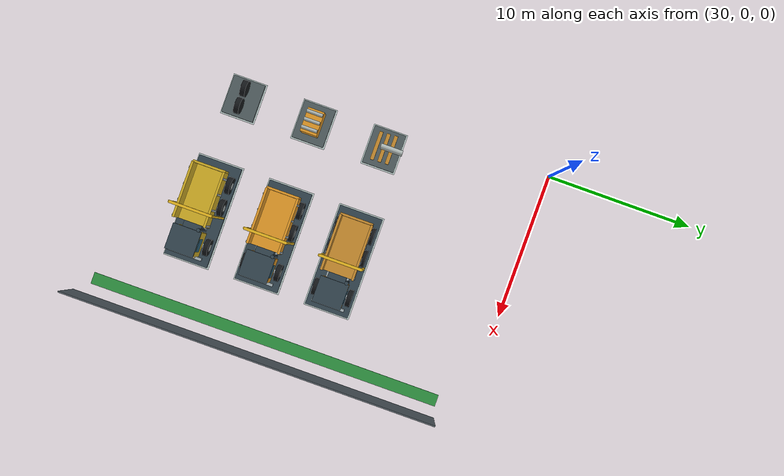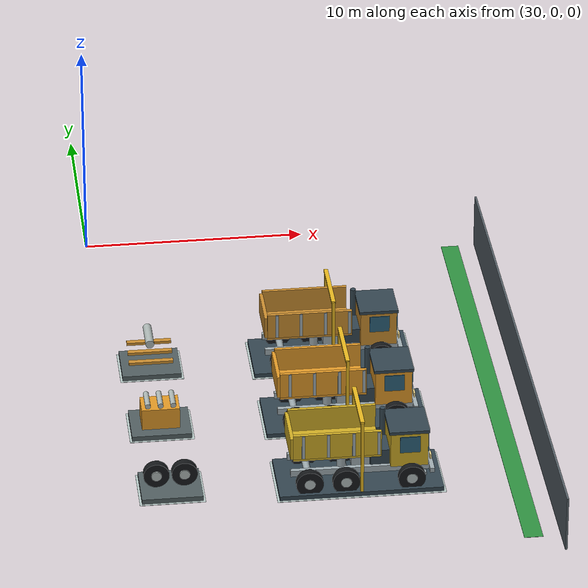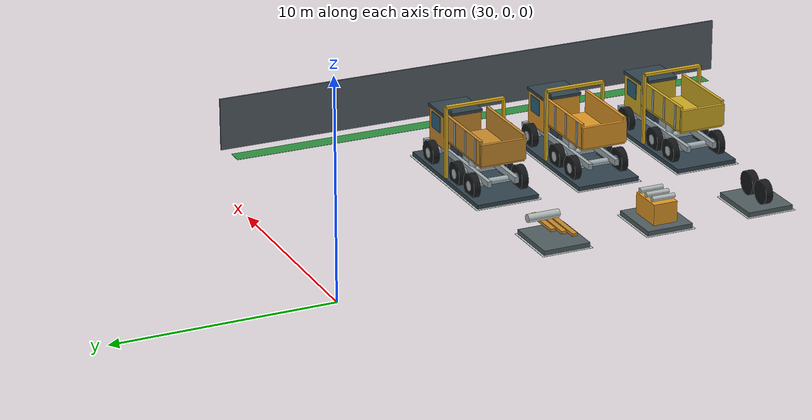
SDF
<sdf version="1.7">
 <world name="warehouse_layout_demo">
  <include><uri>model://sun</uri></include>
  <model name="pedestrian_east_south">
   <static>true</static>
   <pose>46.7 -14.25 0.055 0 0 0</pose>
   <link name="marking">
    <visual name="visual">
     <geometry><box><size>0.8 24.5 0.012</size></box></geometry>
     <material><ambient>0.18 0.57 0.25 1</ambient><diffuse>0.18 0.57 0.25 1</diffuse></material>
    </visual>
   </link>
  </model>
  <model name="east_fence_south">
   <static>true</static>
   <pose>47.9 -14.65 1.25 0 0 0</pose>
   <link name="link">
    <collision name="collision">
     <geometry><box><size>0.09 25.7 2.5</size></box></geometry>
     <surface><friction><ode><mu>0.9</mu><mu2>0.9</mu2></ode></friction></surface>
    </collision>
    <visual name="visual">
     <geometry><box><size>0.09 25.7 2.5</size></box></geometry>
     <material><ambient>0.33 0.37 0.40 1</ambient><diffuse>0.33 0.37 0.40 1</diffuse></material>
    </visual>
   </link>
  </model>
  <model name="vehicle_stage_6_line_1_se_pad">
   <static>true</static>
   <pose>40.0 -21.0 0.012 0 0 0</pose>
   <link name="marking">
    <visual name="visual">
     <geometry><box><size>7.2 3.2 0.012</size></box></geometry>
     <material><ambient>0.72 0.79 0.78 1</ambient><diffuse>0.72 0.79 0.78 1</diffuse></material>
    </visual>
   </link>
  </model>
  <model name="vehicle_stage_6_line_1_se">
   <static>true</static>
   <pose>40.0 -21.0 0 0 0 0</pose>
   <link name="fixture">
    <collision name="collision">
     <pose>0 0 1.9 0 0 0</pose>
     <geometry><box><size>7.0 3.0 3.8</size></box></geometry>
    </collision>
    <visual name="service_platform">
     <pose>0 0 0.11 0 0 0</pose>
     <geometry><box><size>7.0 3.0 0.22</size></box></geometry>
     <material><ambient>0.20 0.27 0.31 1</ambient><diffuse>0.20 0.27 0.31 1</diffuse></material>
    </visual>
    <visual name="chassis_rail_0">
     <pose>0 -0.66 0.85 0 0 0</pose>
     <geometry><box><size>5.9 0.19 0.28</size></box></geometry>
     <material><ambient>0.63 0.68 0.70 1</ambient><diffuse>0.63 0.68 0.70 1</diffuse></material>
    </visual>
    <visual name="haul_tire_0_0">
     <pose>-2.2 -1.18 0.63 1.57079632679 0 0</pose>
     <geometry><cylinder><radius>0.58</radius><length>0.32</length></cylinder></geometry>
     <material><ambient>0.08 0.09 0.10 1</ambient><diffuse>0.08 0.09 0.10 1</diffuse></material>
    </visual>
    <visual name="tire_hub_0_0">
     <pose>-2.2 -1.18 0.63 1.57079632679 0 0</pose>
     <geometry><cylinder><radius>0.23</radius><length>0.34</length></cylinder></geometry>
     <material><ambient>0.70 0.74 0.74 1</ambient><diffuse>0.70 0.74 0.74 1</diffuse></material>
    </visual>
    <visual name="haul_tire_0_1">
     <pose>-0.65 -1.18 0.63 1.57079632679 0 0</pose>
     <geometry><cylinder><radius>0.58</radius><length>0.32</length></cylinder></geometry>
     <material><ambient>0.08 0.09 0.10 1</ambient><diffuse>0.08 0.09 0.10 1</diffuse></material>
    </visual>
    <visual name="tire_hub_0_1">
     <pose>-0.65 -1.18 0.63 1.57079632679 0 0</pose>
     <geometry><cylinder><radius>0.23</radius><length>0.34</length></cylinder></geometry>
     <material><ambient>0.70 0.74 0.74 1</ambient><diffuse>0.70 0.74 0.74 1</diffuse></material>
    </visual>
    <visual name="haul_tire_0_2">
     <pose>2.15 -1.18 0.63 1.57079632679 0 0</pose>
     <geometry><cylinder><radius>0.58</radius><length>0.32</length></cylinder></geometry>
     <material><ambient>0.08 0.09 0.10 1</ambient><diffuse>0.08 0.09 0.10 1</diffuse></material>
    </visual>
    <visual name="tire_hub_0_2">
     <pose>2.15 -1.18 0.63 1.57079632679 0 0</pose>
     <geometry><cylinder><radius>0.23</radius><length>0.34</length></cylinder></geometry>
     <material><ambient>0.70 0.74 0.74 1</ambient><diffuse>0.70 0.74 0.74 1</diffuse></material>
    </visual>
    <visual name="chassis_rail_1">
     <pose>0 0.66 0.85 0 0 0</pose>
     <geometry><box><size>5.9 0.19 0.28</size></box></geometry>
     <material><ambient>0.63 0.68 0.70 1</ambient><diffuse>0.63 0.68 0.70 1</diffuse></material>
    </visual>
    <visual name="haul_tire_1_0">
     <pose>-2.2 1.18 0.63 1.57079632679 0 0</pose>
     <geometry><cylinder><radius>0.58</radius><length>0.32</length></cylinder></geometry>
     <material><ambient>0.08 0.09 0.10 1</ambient><diffuse>0.08 0.09 0.10 1</diffuse></material>
    </visual>
    <visual name="tire_hub_1_0">
     <pose>-2.2 1.18 0.63 1.57079632679 0 0</pose>
     <geometry><cylinder><radius>0.23</radius><length>0.34</length></cylinder></geometry>
     <material><ambient>0.70 0.74 0.74 1</ambient><diffuse>0.70 0.74 0.74 1</diffuse></material>
    </visual>
    <visual name="haul_tire_1_1">
     <pose>-0.65 1.18 0.63 1.57079632679 0 0</pose>
     <geometry><cylinder><radius>0.58</radius><length>0.32</length></cylinder></geometry>
     <material><ambient>0.08 0.09 0.10 1</ambient><diffuse>0.08 0.09 0.10 1</diffuse></material>
    </visual>
    <visual name="tire_hub_1_1">
     <pose>-0.65 1.18 0.63 1.57079632679 0 0</pose>
     <geometry><cylinder><radius>0.23</radius><length>0.34</length></cylinder></geometry>
     <material><ambient>0.70 0.74 0.74 1</ambient><diffuse>0.70 0.74 0.74 1</diffuse></material>
    </visual>
    <visual name="haul_tire_1_2">
     <pose>2.15 1.18 0.63 1.57079632679 0 0</pose>
     <geometry><cylinder><radius>0.58</radius><length>0.32</length></cylinder></geometry>
     <material><ambient>0.08 0.09 0.10 1</ambient><diffuse>0.08 0.09 0.10 1</diffuse></material>
    </visual>
    <visual name="tire_hub_1_2">
     <pose>2.15 1.18 0.63 1.57079632679 0 0</pose>
     <geometry><cylinder><radius>0.23</radius><length>0.34</length></cylinder></geometry>
     <material><ambient>0.70 0.74 0.74 1</ambient><diffuse>0.70 0.74 0.74 1</diffuse></material>
    </visual>
    <visual name="drive_axle_0">
     <pose>-2.2 0 0.68 1.57079632679 0 0</pose>
     <geometry><cylinder><radius>0.15</radius><length>2.38</length></cylinder></geometry>
     <material><ambient>0.63 0.68 0.70 1</ambient><diffuse>0.63 0.68 0.70 1</diffuse></material>
    </visual>
    <visual name="drive_axle_1">
     <pose>-0.65 0 0.68 1.57079632679 0 0</pose>
     <geometry><cylinder><radius>0.15</radius><length>2.38</length></cylinder></geometry>
     <material><ambient>0.63 0.68 0.70 1</ambient><diffuse>0.63 0.68 0.70 1</diffuse></material>
    </visual>
    <visual name="drive_axle_2">
     <pose>2.15 0 0.68 1.57079632679 0 0</pose>
     <geometry><cylinder><radius>0.15</radius><length>2.38</length></cylinder></geometry>
     <material><ambient>0.63 0.68 0.70 1</ambient><diffuse>0.63 0.68 0.70 1</diffuse></material>
    </visual>
    <visual name="diesel_engine">
     <pose>1.15 0 1.26 0 0 0</pose>
     <geometry><box><size>1.38 1.22 0.83</size></box></geometry>
     <material><ambient>0.20 0.27 0.31 1</ambient><diffuse>0.20 0.27 0.31 1</diffuse></material>
    </visual>
    <visual name="gearbox">
     <pose>0.08 0 1.12 0 0 0</pose>
     <geometry><box><size>0.82 0.76 0.6</size></box></geometry>
     <material><ambient>0.63 0.68 0.70 1</ambient><diffuse>0.63 0.68 0.70 1</diffuse></material>
    </visual>
    <visual name="radiator_fan">
     <pose>1.98 0 1.29 1.57079632679 0 0</pose>
     <geometry><cylinder><radius>0.41</radius><length>0.15</length></cylinder></geometry>
     <material><ambient>0.76 0.80 0.79 1</ambient><diffuse>0.76 0.80 0.79 1</diffuse></material>
    </visual>
    <visual name="operator_cab">
     <pose>2.08 0 1.82 0 0 0</pose>
     <geometry><box><size>1.6 1.83 1.62</size></box></geometry>
     <material><ambient>0.82 0.68 0.14 1</ambient><diffuse>0.82 0.68 0.14 1</diffuse></material>
    </visual>
    <visual name="cab_roof">
     <pose>2.08 0 2.66 0 0 0</pose>
     <geometry><box><size>1.72 1.91 0.14</size></box></geometry>
     <material><ambient>0.20 0.27 0.31 1</ambient><diffuse>0.20 0.27 0.31 1</diffuse></material>
    </visual>
    <visual name="windshield">
     <pose>2.91 0 2.03 0 0 0</pose>
     <geometry><box><size>0.045 1.48 0.91</size></box></geometry>
     <material><ambient>0.17 0.38 0.48 1</ambient><diffuse>0.17 0.38 0.48 1</diffuse></material>
    </visual>
    <visual name="exhaust_stack">
     <pose>1.14 0.76 2.15 0.0 0 0</pose>
     <geometry><cylinder><radius>0.12</radius><length>1.57</length></cylinder></geometry>
     <material><ambient>0.20 0.27 0.31 1</ambient><diffuse>0.20 0.27 0.31 1</diffuse></material>
    </visual>
    <visual name="cab_side_glass_0">
     <pose>2.11 -0.95 2.08 0 0 0</pose>
     <geometry><box><size>0.87 0.035 0.76</size></box></geometry>
     <material><ambient>0.17 0.38 0.48 1</ambient><diffuse>0.17 0.38 0.48 1</diffuse></material>
    </visual>
    <visual name="cab_side_glass_1">
     <pose>2.11 0.95 2.08 0 0 0</pose>
     <geometry><box><size>0.87 0.035 0.76</size></box></geometry>
     <material><ambient>0.17 0.38 0.48 1</ambient><diffuse>0.17 0.38 0.48 1</diffuse></material>
    </visual>
    <visual name="dump_bed_floor">
     <pose>-1.01 0 1.78 0 0 0</pose>
     <geometry><box><size>3.75 2.15 0.22</size></box></geometry>
     <material><ambient>0.82 0.68 0.14 1</ambient><diffuse>0.82 0.68 0.14 1</diffuse></material>
    </visual>
    <visual name="dump_bed_side_0">
     <pose>-1.01 -1.05 2.37 0 0 0</pose>
     <geometry><box><size>3.75 0.15 1.15</size></box></geometry>
     <material><ambient>0.82 0.68 0.14 1</ambient><diffuse>0.82 0.68 0.14 1</diffuse></material>
    </visual>
    <visual name="bed_rib_0_0">
     <pose>-2.46 -1.1235000000000002 2.37 0 0 0</pose>
     <geometry><box><size>0.13 0.08 1.1</size></box></geometry>
     <material><ambient>0.63 0.68 0.70 1</ambient><diffuse>0.63 0.68 0.70 1</diffuse></material>
    </visual>
    <visual name="bed_rib_0_1">
     <pose>-1.39 -1.1235000000000002 2.37 0 0 0</pose>
     <geometry><box><size>0.13 0.08 1.1</size></box></geometry>
     <material><ambient>0.63 0.68 0.70 1</ambient><diffuse>0.63 0.68 0.70 1</diffuse></material>
    </visual>
    <visual name="bed_rib_0_2">
     <pose>-0.32 -1.1235000000000002 2.37 0 0 0</pose>
     <geometry><box><size>0.13 0.08 1.1</size></box></geometry>
     <material><ambient>0.63 0.68 0.70 1</ambient><diffuse>0.63 0.68 0.70 1</diffuse></material>
    </visual>
    <visual name="bed_rib_0_3">
     <pose>0.75 -1.1235000000000002 2.37 0 0 0</pose>
     <geometry><box><size>0.13 0.08 1.1</size></box></geometry>
     <material><ambient>0.63 0.68 0.70 1</ambient><diffuse>0.63 0.68 0.70 1</diffuse></material>
    </visual>
    <visual name="dump_bed_side_1">
     <pose>-1.01 1.05 2.37 0 0 0</pose>
     <geometry><box><size>3.75 0.15 1.15</size></box></geometry>
     <material><ambient>0.82 0.68 0.14 1</ambient><diffuse>0.82 0.68 0.14 1</diffuse></material>
    </visual>
    <visual name="bed_rib_1_0">
     <pose>-2.46 1.1235000000000002 2.37 0 0 0</pose>
     <geometry><box><size>0.13 0.08 1.1</size></box></geometry>
     <material><ambient>0.63 0.68 0.70 1</ambient><diffuse>0.63 0.68 0.70 1</diffuse></material>
    </visual>
    <visual name="bed_rib_1_1">
     <pose>-1.39 1.1235000000000002 2.37 0 0 0</pose>
     <geometry><box><size>0.13 0.08 1.1</size></box></geometry>
     <material><ambient>0.63 0.68 0.70 1</ambient><diffuse>0.63 0.68 0.70 1</diffuse></material>
    </visual>
    <visual name="bed_rib_1_2">
     <pose>-0.32 1.1235000000000002 2.37 0 0 0</pose>
     <geometry><box><size>0.13 0.08 1.1</size></box></geometry>
     <material><ambient>0.63 0.68 0.70 1</ambient><diffuse>0.63 0.68 0.70 1</diffuse></material>
    </visual>
    <visual name="bed_rib_1_3">
     <pose>0.75 1.1235000000000002 2.37 0 0 0</pose>
     <geometry><box><size>0.13 0.08 1.1</size></box></geometry>
     <material><ambient>0.63 0.68 0.70 1</ambient><diffuse>0.63 0.68 0.70 1</diffuse></material>
    </visual>
    <visual name="rear_gate">
     <pose>-2.93 0 2.29 0 0 0</pose>
     <geometry><box><size>0.15 2.2 1.0</size></box></geometry>
     <material><ambient>0.82 0.68 0.14 1</ambient><diffuse>0.82 0.68 0.14 1</diffuse></material>
    </visual>
    <visual name="hydraulic_lift_left">
     <pose>-0.78 -0.48 1.37 0.0 0 0</pose>
     <geometry><cylinder><radius>0.18</radius><length>1.0</length></cylinder></geometry>
     <material><ambient>0.63 0.68 0.70 1</ambient><diffuse>0.63 0.68 0.70 1</diffuse></material>
    </visual>
    <visual name="hydraulic_lift_right">
     <pose>-0.78 0.48 1.37 0.0 0 0</pose>
     <geometry><cylinder><radius>0.18</radius><length>1.0</length></cylinder></geometry>
     <material><ambient>0.63 0.68 0.70 1</ambient><diffuse>0.63 0.68 0.70 1</diffuse></material>
    </visual>
    <visual name="test_gantry_post_0">
     <pose>0 -1.42 1.86 0 0 0</pose>
     <geometry><box><size>0.13 0.13 3.52</size></box></geometry>
     <material><ambient>0.91 0.72 0.12 1</ambient><diffuse>0.91 0.72 0.12 1</diffuse></material>
    </visual>
    <visual name="test_gantry_post_1">
     <pose>0 1.42 1.86 0 0 0</pose>
     <geometry><box><size>0.13 0.13 3.52</size></box></geometry>
     <material><ambient>0.91 0.72 0.12 1</ambient><diffuse>0.91 0.72 0.12 1</diffuse></material>
    </visual>
    <visual name="test_gantry_beam">
     <pose>0 0 3.59 0 0 0</pose>
     <geometry><box><size>0.18 2.86 0.13</size></box></geometry>
     <material><ambient>0.91 0.72 0.12 1</ambient><diffuse>0.91 0.72 0.12 1</diffuse></material>
    </visual>
    <visual name="headlamp_0">
     <pose>3.01 -0.62 1.3 0 0 0</pose>
     <geometry><box><size>0.07 0.3 0.21</size></box></geometry>
     <material><ambient>0.98 0.89 0.59 1</ambient><diffuse>0.98 0.89 0.59 1</diffuse></material>
    </visual>
    <visual name="headlamp_1">
     <pose>3.01 0.62 1.3 0 0 0</pose>
     <geometry><box><size>0.07 0.3 0.21</size></box></geometry>
     <material><ambient>0.98 0.89 0.59 1</ambient><diffuse>0.98 0.89 0.59 1</diffuse></material>
    </visual>
    <visual name="front_bumper">
     <pose>3.04 0 0.85 0 0 0</pose>
     <geometry><box><size>0.19 2.27 0.21</size></box></geometry>
     <material><ambient>0.63 0.68 0.70 1</ambient><diffuse>0.63 0.68 0.70 1</diffuse></material>
    </visual>
    <visual name="safety_step">
     <pose>2.45 -1.02 0.72 0 0 0</pose>
     <geometry><box><size>0.67 0.23 0.13</size></box></geometry>
     <material><ambient>0.63 0.68 0.70 1</ambient><diffuse>0.63 0.68 0.70 1</diffuse></material>
    </visual>
   </link>
  </model>
  <model name="assembly_kit_2_line_1_se_pad">
   <static>true</static>
   <pose>32.0 -21.0 0.012 0 0 0</pose>
   <link name="marking">
    <visual name="visual">
     <geometry><box><size>2.8000000000000003 2.4000000000000004 0.012</size></box></geometry>
     <material><ambient>0.72 0.79 0.78 1</ambient><diffuse>0.72 0.79 0.78 1</diffuse></material>
    </visual>
   </link>
  </model>
  <model name="assembly_kit_2_line_1_se">
   <static>true</static>
   <pose>32.0 -21.0 0 0 0 0</pose>
   <link name="fixture">
    <collision name="collision">
     <pose>0 0 0.95 0 0 0</pose>
     <geometry><box><size>2.6 2.2 1.9</size></box></geometry>
    </collision>
    <visual name="kit_frame">
     <pose>0 0 0.12 0 0 0</pose>
     <geometry><box><size>2.6 2.2 0.24</size></box></geometry>
     <material><ambient>0.32 0.37 0.38 1</ambient><diffuse>0.32 0.37 0.38 1</diffuse></material>
    </visual>
    <visual name="spare_tire_0">
     <pose>-0.6 0 0.8 1.57079632679 0 0</pose>
     <geometry><cylinder><radius>0.55</radius><length>0.35</length></cylinder></geometry>
     <material><ambient>0.08 0.09 0.10 1</ambient><diffuse>0.08 0.09 0.10 1</diffuse></material>
    </visual>
    <visual name="tire_hub_0">
     <pose>-0.6 -0.2 0.8 1.57079632679 0 0</pose>
     <geometry><cylinder><radius>0.22</radius><length>0.05</length></cylinder></geometry>
     <material><ambient>0.69 0.73 0.72 1</ambient><diffuse>0.69 0.73 0.72 1</diffuse></material>
    </visual>
    <visual name="spare_tire_1">
     <pose>0.6 0 0.8 1.57079632679 0 0</pose>
     <geometry><cylinder><radius>0.55</radius><length>0.35</length></cylinder></geometry>
     <material><ambient>0.08 0.09 0.10 1</ambient><diffuse>0.08 0.09 0.10 1</diffuse></material>
    </visual>
    <visual name="tire_hub_1">
     <pose>0.6 -0.2 0.8 1.57079632679 0 0</pose>
     <geometry><cylinder><radius>0.22</radius><length>0.05</length></cylinder></geometry>
     <material><ambient>0.69 0.73 0.72 1</ambient><diffuse>0.69 0.73 0.72 1</diffuse></material>
    </visual>
   </link>
  </model>
  <model name="vehicle_stage_6_line_2_se_pad">
   <static>true</static>
   <pose>40.0 -16.0 0.012 0 0 0</pose>
   <link name="marking">
    <visual name="visual">
     <geometry><box><size>7.2 3.2 0.012</size></box></geometry>
     <material><ambient>0.72 0.79 0.78 1</ambient><diffuse>0.72 0.79 0.78 1</diffuse></material>
    </visual>
   </link>
  </model>
  <model name="vehicle_stage_6_line_2_se">
   <static>true</static>
   <pose>40.0 -16.0 0 0 0 0</pose>
   <link name="fixture">
    <collision name="collision">
     <pose>0 0 1.9 0 0 0</pose>
     <geometry><box><size>7.0 3.0 3.8</size></box></geometry>
    </collision>
    <visual name="service_platform">
     <pose>0 0 0.11 0 0 0</pose>
     <geometry><box><size>7.0 3.0 0.22</size></box></geometry>
     <material><ambient>0.20 0.27 0.31 1</ambient><diffuse>0.20 0.27 0.31 1</diffuse></material>
    </visual>
    <visual name="chassis_rail_0">
     <pose>0 -0.66 0.85 0 0 0</pose>
     <geometry><box><size>5.9 0.19 0.28</size></box></geometry>
     <material><ambient>0.63 0.68 0.70 1</ambient><diffuse>0.63 0.68 0.70 1</diffuse></material>
    </visual>
    <visual name="haul_tire_0_0">
     <pose>-2.2 -1.18 0.63 1.57079632679 0 0</pose>
     <geometry><cylinder><radius>0.58</radius><length>0.32</length></cylinder></geometry>
     <material><ambient>0.08 0.09 0.10 1</ambient><diffuse>0.08 0.09 0.10 1</diffuse></material>
    </visual>
    <visual name="tire_hub_0_0">
     <pose>-2.2 -1.18 0.63 1.57079632679 0 0</pose>
     <geometry><cylinder><radius>0.23</radius><length>0.34</length></cylinder></geometry>
     <material><ambient>0.70 0.74 0.74 1</ambient><diffuse>0.70 0.74 0.74 1</diffuse></material>
    </visual>
    <visual name="haul_tire_0_1">
     <pose>-0.65 -1.18 0.63 1.57079632679 0 0</pose>
     <geometry><cylinder><radius>0.58</radius><length>0.32</length></cylinder></geometry>
     <material><ambient>0.08 0.09 0.10 1</ambient><diffuse>0.08 0.09 0.10 1</diffuse></material>
    </visual>
    <visual name="tire_hub_0_1">
     <pose>-0.65 -1.18 0.63 1.57079632679 0 0</pose>
     <geometry><cylinder><radius>0.23</radius><length>0.34</length></cylinder></geometry>
     <material><ambient>0.70 0.74 0.74 1</ambient><diffuse>0.70 0.74 0.74 1</diffuse></material>
    </visual>
    <visual name="haul_tire_0_2">
     <pose>2.15 -1.18 0.63 1.57079632679 0 0</pose>
     <geometry><cylinder><radius>0.58</radius><length>0.32</length></cylinder></geometry>
     <material><ambient>0.08 0.09 0.10 1</ambient><diffuse>0.08 0.09 0.10 1</diffuse></material>
    </visual>
    <visual name="tire_hub_0_2">
     <pose>2.15 -1.18 0.63 1.57079632679 0 0</pose>
     <geometry><cylinder><radius>0.23</radius><length>0.34</length></cylinder></geometry>
     <material><ambient>0.70 0.74 0.74 1</ambient><diffuse>0.70 0.74 0.74 1</diffuse></material>
    </visual>
    <visual name="chassis_rail_1">
     <pose>0 0.66 0.85 0 0 0</pose>
     <geometry><box><size>5.9 0.19 0.28</size></box></geometry>
     <material><ambient>0.63 0.68 0.70 1</ambient><diffuse>0.63 0.68 0.70 1</diffuse></material>
    </visual>
    <visual name="haul_tire_1_0">
     <pose>-2.2 1.18 0.63 1.57079632679 0 0</pose>
     <geometry><cylinder><radius>0.58</radius><length>0.32</length></cylinder></geometry>
     <material><ambient>0.08 0.09 0.10 1</ambient><diffuse>0.08 0.09 0.10 1</diffuse></material>
    </visual>
    <visual name="tire_hub_1_0">
     <pose>-2.2 1.18 0.63 1.57079632679 0 0</pose>
     <geometry><cylinder><radius>0.23</radius><length>0.34</length></cylinder></geometry>
     <material><ambient>0.70 0.74 0.74 1</ambient><diffuse>0.70 0.74 0.74 1</diffuse></material>
    </visual>
    <visual name="haul_tire_1_1">
     <pose>-0.65 1.18 0.63 1.57079632679 0 0</pose>
     <geometry><cylinder><radius>0.58</radius><length>0.32</length></cylinder></geometry>
     <material><ambient>0.08 0.09 0.10 1</ambient><diffuse>0.08 0.09 0.10 1</diffuse></material>
    </visual>
    <visual name="tire_hub_1_1">
     <pose>-0.65 1.18 0.63 1.57079632679 0 0</pose>
     <geometry><cylinder><radius>0.23</radius><length>0.34</length></cylinder></geometry>
     <material><ambient>0.70 0.74 0.74 1</ambient><diffuse>0.70 0.74 0.74 1</diffuse></material>
    </visual>
    <visual name="haul_tire_1_2">
     <pose>2.15 1.18 0.63 1.57079632679 0 0</pose>
     <geometry><cylinder><radius>0.58</radius><length>0.32</length></cylinder></geometry>
     <material><ambient>0.08 0.09 0.10 1</ambient><diffuse>0.08 0.09 0.10 1</diffuse></material>
    </visual>
    <visual name="tire_hub_1_2">
     <pose>2.15 1.18 0.63 1.57079632679 0 0</pose>
     <geometry><cylinder><radius>0.23</radius><length>0.34</length></cylinder></geometry>
     <material><ambient>0.70 0.74 0.74 1</ambient><diffuse>0.70 0.74 0.74 1</diffuse></material>
    </visual>
    <visual name="drive_axle_0">
     <pose>-2.2 0 0.68 1.57079632679 0 0</pose>
     <geometry><cylinder><radius>0.15</radius><length>2.38</length></cylinder></geometry>
     <material><ambient>0.63 0.68 0.70 1</ambient><diffuse>0.63 0.68 0.70 1</diffuse></material>
    </visual>
    <visual name="drive_axle_1">
     <pose>-0.65 0 0.68 1.57079632679 0 0</pose>
     <geometry><cylinder><radius>0.15</radius><length>2.38</length></cylinder></geometry>
     <material><ambient>0.63 0.68 0.70 1</ambient><diffuse>0.63 0.68 0.70 1</diffuse></material>
    </visual>
    <visual name="drive_axle_2">
     <pose>2.15 0 0.68 1.57079632679 0 0</pose>
     <geometry><cylinder><radius>0.15</radius><length>2.38</length></cylinder></geometry>
     <material><ambient>0.63 0.68 0.70 1</ambient><diffuse>0.63 0.68 0.70 1</diffuse></material>
    </visual>
    <visual name="diesel_engine">
     <pose>1.15 0 1.26 0 0 0</pose>
     <geometry><box><size>1.38 1.22 0.83</size></box></geometry>
     <material><ambient>0.20 0.27 0.31 1</ambient><diffuse>0.20 0.27 0.31 1</diffuse></material>
    </visual>
    <visual name="gearbox">
     <pose>0.08 0 1.12 0 0 0</pose>
     <geometry><box><size>0.82 0.76 0.6</size></box></geometry>
     <material><ambient>0.63 0.68 0.70 1</ambient><diffuse>0.63 0.68 0.70 1</diffuse></material>
    </visual>
    <visual name="radiator_fan">
     <pose>1.98 0 1.29 1.57079632679 0 0</pose>
     <geometry><cylinder><radius>0.41</radius><length>0.15</length></cylinder></geometry>
     <material><ambient>0.76 0.80 0.79 1</ambient><diffuse>0.76 0.80 0.79 1</diffuse></material>
    </visual>
    <visual name="operator_cab">
     <pose>2.08 0 1.82 0 0 0</pose>
     <geometry><box><size>1.6 1.83 1.62</size></box></geometry>
     <material><ambient>0.89 0.60 0.15 1</ambient><diffuse>0.89 0.60 0.15 1</diffuse></material>
    </visual>
    <visual name="cab_roof">
     <pose>2.08 0 2.66 0 0 0</pose>
     <geometry><box><size>1.72 1.91 0.14</size></box></geometry>
     <material><ambient>0.20 0.27 0.31 1</ambient><diffuse>0.20 0.27 0.31 1</diffuse></material>
    </visual>
    <visual name="windshield">
     <pose>2.91 0 2.03 0 0 0</pose>
     <geometry><box><size>0.045 1.48 0.91</size></box></geometry>
     <material><ambient>0.17 0.38 0.48 1</ambient><diffuse>0.17 0.38 0.48 1</diffuse></material>
    </visual>
    <visual name="exhaust_stack">
     <pose>1.14 0.76 2.15 0.0 0 0</pose>
     <geometry><cylinder><radius>0.12</radius><length>1.57</length></cylinder></geometry>
     <material><ambient>0.20 0.27 0.31 1</ambient><diffuse>0.20 0.27 0.31 1</diffuse></material>
    </visual>
    <visual name="cab_side_glass_0">
     <pose>2.11 -0.95 2.08 0 0 0</pose>
     <geometry><box><size>0.87 0.035 0.76</size></box></geometry>
     <material><ambient>0.17 0.38 0.48 1</ambient><diffuse>0.17 0.38 0.48 1</diffuse></material>
    </visual>
    <visual name="cab_side_glass_1">
     <pose>2.11 0.95 2.08 0 0 0</pose>
     <geometry><box><size>0.87 0.035 0.76</size></box></geometry>
     <material><ambient>0.17 0.38 0.48 1</ambient><diffuse>0.17 0.38 0.48 1</diffuse></material>
    </visual>
    <visual name="dump_bed_floor">
     <pose>-1.01 0 1.78 0 0 0</pose>
     <geometry><box><size>3.75 2.15 0.22</size></box></geometry>
     <material><ambient>0.89 0.60 0.15 1</ambient><diffuse>0.89 0.60 0.15 1</diffuse></material>
    </visual>
    <visual name="dump_bed_side_0">
     <pose>-1.01 -1.05 2.37 0 0 0</pose>
     <geometry><box><size>3.75 0.15 1.15</size></box></geometry>
     <material><ambient>0.89 0.60 0.15 1</ambient><diffuse>0.89 0.60 0.15 1</diffuse></material>
    </visual>
    <visual name="bed_rib_0_0">
     <pose>-2.46 -1.1235000000000002 2.37 0 0 0</pose>
     <geometry><box><size>0.13 0.08 1.1</size></box></geometry>
     <material><ambient>0.63 0.68 0.70 1</ambient><diffuse>0.63 0.68 0.70 1</diffuse></material>
    </visual>
    <visual name="bed_rib_0_1">
     <pose>-1.39 -1.1235000000000002 2.37 0 0 0</pose>
     <geometry><box><size>0.13 0.08 1.1</size></box></geometry>
     <material><ambient>0.63 0.68 0.70 1</ambient><diffuse>0.63 0.68 0.70 1</diffuse></material>
    </visual>
    <visual name="bed_rib_0_2">
     <pose>-0.32 -1.1235000000000002 2.37 0 0 0</pose>
     <geometry><box><size>0.13 0.08 1.1</size></box></geometry>
     <material><ambient>0.63 0.68 0.70 1</ambient><diffuse>0.63 0.68 0.70 1</diffuse></material>
    </visual>
    <visual name="bed_rib_0_3">
     <pose>0.75 -1.1235000000000002 2.37 0 0 0</pose>
     <geometry><box><size>0.13 0.08 1.1</size></box></geometry>
     <material><ambient>0.63 0.68 0.70 1</ambient><diffuse>0.63 0.68 0.70 1</diffuse></material>
    </visual>
    <visual name="dump_bed_side_1">
     <pose>-1.01 1.05 2.37 0 0 0</pose>
     <geometry><box><size>3.75 0.15 1.15</size></box></geometry>
     <material><ambient>0.89 0.60 0.15 1</ambient><diffuse>0.89 0.60 0.15 1</diffuse></material>
    </visual>
    <visual name="bed_rib_1_0">
     <pose>-2.46 1.1235000000000002 2.37 0 0 0</pose>
     <geometry><box><size>0.13 0.08 1.1</size></box></geometry>
     <material><ambient>0.63 0.68 0.70 1</ambient><diffuse>0.63 0.68 0.70 1</diffuse></material>
    </visual>
    <visual name="bed_rib_1_1">
     <pose>-1.39 1.1235000000000002 2.37 0 0 0</pose>
     <geometry><box><size>0.13 0.08 1.1</size></box></geometry>
     <material><ambient>0.63 0.68 0.70 1</ambient><diffuse>0.63 0.68 0.70 1</diffuse></material>
    </visual>
    <visual name="bed_rib_1_2">
     <pose>-0.32 1.1235000000000002 2.37 0 0 0</pose>
     <geometry><box><size>0.13 0.08 1.1</size></box></geometry>
     <material><ambient>0.63 0.68 0.70 1</ambient><diffuse>0.63 0.68 0.70 1</diffuse></material>
    </visual>
    <visual name="bed_rib_1_3">
     <pose>0.75 1.1235000000000002 2.37 0 0 0</pose>
     <geometry><box><size>0.13 0.08 1.1</size></box></geometry>
     <material><ambient>0.63 0.68 0.70 1</ambient><diffuse>0.63 0.68 0.70 1</diffuse></material>
    </visual>
    <visual name="rear_gate">
     <pose>-2.93 0 2.29 0 0 0</pose>
     <geometry><box><size>0.15 2.2 1.0</size></box></geometry>
     <material><ambient>0.89 0.60 0.15 1</ambient><diffuse>0.89 0.60 0.15 1</diffuse></material>
    </visual>
    <visual name="hydraulic_lift_left">
     <pose>-0.78 -0.48 1.37 0.0 0 0</pose>
     <geometry><cylinder><radius>0.18</radius><length>1.0</length></cylinder></geometry>
     <material><ambient>0.63 0.68 0.70 1</ambient><diffuse>0.63 0.68 0.70 1</diffuse></material>
    </visual>
    <visual name="hydraulic_lift_right">
     <pose>-0.78 0.48 1.37 0.0 0 0</pose>
     <geometry><cylinder><radius>0.18</radius><length>1.0</length></cylinder></geometry>
     <material><ambient>0.63 0.68 0.70 1</ambient><diffuse>0.63 0.68 0.70 1</diffuse></material>
    </visual>
    <visual name="test_gantry_post_0">
     <pose>0 -1.42 1.86 0 0 0</pose>
     <geometry><box><size>0.13 0.13 3.52</size></box></geometry>
     <material><ambient>0.91 0.72 0.12 1</ambient><diffuse>0.91 0.72 0.12 1</diffuse></material>
    </visual>
    <visual name="test_gantry_post_1">
     <pose>0 1.42 1.86 0 0 0</pose>
     <geometry><box><size>0.13 0.13 3.52</size></box></geometry>
     <material><ambient>0.91 0.72 0.12 1</ambient><diffuse>0.91 0.72 0.12 1</diffuse></material>
    </visual>
    <visual name="test_gantry_beam">
     <pose>0 0 3.59 0 0 0</pose>
     <geometry><box><size>0.18 2.86 0.13</size></box></geometry>
     <material><ambient>0.91 0.72 0.12 1</ambient><diffuse>0.91 0.72 0.12 1</diffuse></material>
    </visual>
    <visual name="headlamp_0">
     <pose>3.01 -0.62 1.3 0 0 0</pose>
     <geometry><box><size>0.07 0.3 0.21</size></box></geometry>
     <material><ambient>0.98 0.89 0.59 1</ambient><diffuse>0.98 0.89 0.59 1</diffuse></material>
    </visual>
    <visual name="headlamp_1">
     <pose>3.01 0.62 1.3 0 0 0</pose>
     <geometry><box><size>0.07 0.3 0.21</size></box></geometry>
     <material><ambient>0.98 0.89 0.59 1</ambient><diffuse>0.98 0.89 0.59 1</diffuse></material>
    </visual>
    <visual name="front_bumper">
     <pose>3.04 0 0.85 0 0 0</pose>
     <geometry><box><size>0.19 2.27 0.21</size></box></geometry>
     <material><ambient>0.63 0.68 0.70 1</ambient><diffuse>0.63 0.68 0.70 1</diffuse></material>
    </visual>
    <visual name="safety_step">
     <pose>2.45 -1.02 0.72 0 0 0</pose>
     <geometry><box><size>0.67 0.23 0.13</size></box></geometry>
     <material><ambient>0.63 0.68 0.70 1</ambient><diffuse>0.63 0.68 0.70 1</diffuse></material>
    </visual>
   </link>
  </model>
  <model name="assembly_kit_2_line_2_se_pad">
   <static>true</static>
   <pose>32.0 -16.0 0.012 0 0 0</pose>
   <link name="marking">
    <visual name="visual">
     <geometry><box><size>2.8000000000000003 2.4000000000000004 0.012</size></box></geometry>
     <material><ambient>0.72 0.79 0.78 1</ambient><diffuse>0.72 0.79 0.78 1</diffuse></material>
    </visual>
   </link>
  </model>
  <model name="assembly_kit_2_line_2_se">
   <static>true</static>
   <pose>32.0 -16.0 0 0 0 0</pose>
   <link name="fixture">
    <collision name="collision">
     <pose>0 0 0.95 0 0 0</pose>
     <geometry><box><size>2.6 2.2 1.9</size></box></geometry>
    </collision>
    <visual name="kit_frame">
     <pose>0 0 0.12 0 0 0</pose>
     <geometry><box><size>2.6 2.2 0.24</size></box></geometry>
     <material><ambient>0.32 0.37 0.38 1</ambient><diffuse>0.32 0.37 0.38 1</diffuse></material>
    </visual>
    <visual name="engine_crate">
     <pose>0 0 0.7 0 0 0</pose>
     <geometry><box><size>1.65 1.14 1.02</size></box></geometry>
     <material><ambient>0.89 0.60 0.15 1</ambient><diffuse>0.89 0.60 0.15 1</diffuse></material>
    </visual>
    <visual name="pipe_0">
     <pose>-0.55 0 1.38 1.57079632679 0 0</pose>
     <geometry><cylinder><radius>0.12</radius><length>1.1</length></cylinder></geometry>
     <material><ambient>0.69 0.73 0.72 1</ambient><diffuse>0.69 0.73 0.72 1</diffuse></material>
    </visual>
    <visual name="pipe_1">
     <pose>0 0 1.38 1.57079632679 0 0</pose>
     <geometry><cylinder><radius>0.12</radius><length>1.1</length></cylinder></geometry>
     <material><ambient>0.69 0.73 0.72 1</ambient><diffuse>0.69 0.73 0.72 1</diffuse></material>
    </visual>
    <visual name="pipe_2">
     <pose>0.55 0 1.38 1.57079632679 0 0</pose>
     <geometry><cylinder><radius>0.12</radius><length>1.1</length></cylinder></geometry>
     <material><ambient>0.69 0.73 0.72 1</ambient><diffuse>0.69 0.73 0.72 1</diffuse></material>
    </visual>
   </link>
  </model>
  <model name="vehicle_stage_6_line_3_se_pad">
   <static>true</static>
   <pose>40.0 -11.0 0.012 0 0 0</pose>
   <link name="marking">
    <visual name="visual">
     <geometry><box><size>7.2 3.2 0.012</size></box></geometry>
     <material><ambient>0.72 0.79 0.78 1</ambient><diffuse>0.72 0.79 0.78 1</diffuse></material>
    </visual>
   </link>
  </model>
  <model name="vehicle_stage_6_line_3_se">
   <static>true</static>
   <pose>40.0 -11.0 0 0 0 0</pose>
   <link name="fixture">
    <collision name="collision">
     <pose>0 0 1.9 0 0 0</pose>
     <geometry><box><size>7.0 3.0 3.8</size></box></geometry>
    </collision>
    <visual name="service_platform">
     <pose>0 0 0.11 0 0 0</pose>
     <geometry><box><size>7.0 3.0 0.22</size></box></geometry>
     <material><ambient>0.20 0.27 0.31 1</ambient><diffuse>0.20 0.27 0.31 1</diffuse></material>
    </visual>
    <visual name="chassis_rail_0">
     <pose>0 -0.66 0.85 0 0 0</pose>
     <geometry><box><size>5.9 0.19 0.28</size></box></geometry>
     <material><ambient>0.63 0.68 0.70 1</ambient><diffuse>0.63 0.68 0.70 1</diffuse></material>
    </visual>
    <visual name="haul_tire_0_0">
     <pose>-2.2 -1.18 0.63 1.57079632679 0 0</pose>
     <geometry><cylinder><radius>0.58</radius><length>0.32</length></cylinder></geometry>
     <material><ambient>0.08 0.09 0.10 1</ambient><diffuse>0.08 0.09 0.10 1</diffuse></material>
    </visual>
    <visual name="tire_hub_0_0">
     <pose>-2.2 -1.18 0.63 1.57079632679 0 0</pose>
     <geometry><cylinder><radius>0.23</radius><length>0.34</length></cylinder></geometry>
     <material><ambient>0.70 0.74 0.74 1</ambient><diffuse>0.70 0.74 0.74 1</diffuse></material>
    </visual>
    <visual name="haul_tire_0_1">
     <pose>-0.65 -1.18 0.63 1.57079632679 0 0</pose>
     <geometry><cylinder><radius>0.58</radius><length>0.32</length></cylinder></geometry>
     <material><ambient>0.08 0.09 0.10 1</ambient><diffuse>0.08 0.09 0.10 1</diffuse></material>
    </visual>
    <visual name="tire_hub_0_1">
     <pose>-0.65 -1.18 0.63 1.57079632679 0 0</pose>
     <geometry><cylinder><radius>0.23</radius><length>0.34</length></cylinder></geometry>
     <material><ambient>0.70 0.74 0.74 1</ambient><diffuse>0.70 0.74 0.74 1</diffuse></material>
    </visual>
    <visual name="haul_tire_0_2">
     <pose>2.15 -1.18 0.63 1.57079632679 0 0</pose>
     <geometry><cylinder><radius>0.58</radius><length>0.32</length></cylinder></geometry>
     <material><ambient>0.08 0.09 0.10 1</ambient><diffuse>0.08 0.09 0.10 1</diffuse></material>
    </visual>
    <visual name="tire_hub_0_2">
     <pose>2.15 -1.18 0.63 1.57079632679 0 0</pose>
     <geometry><cylinder><radius>0.23</radius><length>0.34</length></cylinder></geometry>
     <material><ambient>0.70 0.74 0.74 1</ambient><diffuse>0.70 0.74 0.74 1</diffuse></material>
    </visual>
    <visual name="chassis_rail_1">
     <pose>0 0.66 0.85 0 0 0</pose>
     <geometry><box><size>5.9 0.19 0.28</size></box></geometry>
     <material><ambient>0.63 0.68 0.70 1</ambient><diffuse>0.63 0.68 0.70 1</diffuse></material>
    </visual>
    <visual name="haul_tire_1_0">
     <pose>-2.2 1.18 0.63 1.57079632679 0 0</pose>
     <geometry><cylinder><radius>0.58</radius><length>0.32</length></cylinder></geometry>
     <material><ambient>0.08 0.09 0.10 1</ambient><diffuse>0.08 0.09 0.10 1</diffuse></material>
    </visual>
    <visual name="tire_hub_1_0">
     <pose>-2.2 1.18 0.63 1.57079632679 0 0</pose>
     <geometry><cylinder><radius>0.23</radius><length>0.34</length></cylinder></geometry>
     <material><ambient>0.70 0.74 0.74 1</ambient><diffuse>0.70 0.74 0.74 1</diffuse></material>
    </visual>
    <visual name="haul_tire_1_1">
     <pose>-0.65 1.18 0.63 1.57079632679 0 0</pose>
     <geometry><cylinder><radius>0.58</radius><length>0.32</length></cylinder></geometry>
     <material><ambient>0.08 0.09 0.10 1</ambient><diffuse>0.08 0.09 0.10 1</diffuse></material>
    </visual>
    <visual name="tire_hub_1_1">
     <pose>-0.65 1.18 0.63 1.57079632679 0 0</pose>
     <geometry><cylinder><radius>0.23</radius><length>0.34</length></cylinder></geometry>
     <material><ambient>0.70 0.74 0.74 1</ambient><diffuse>0.70 0.74 0.74 1</diffuse></material>
    </visual>
    <visual name="haul_tire_1_2">
     <pose>2.15 1.18 0.63 1.57079632679 0 0</pose>
     <geometry><cylinder><radius>0.58</radius><length>0.32</length></cylinder></geometry>
     <material><ambient>0.08 0.09 0.10 1</ambient><diffuse>0.08 0.09 0.10 1</diffuse></material>
    </visual>
    <visual name="tire_hub_1_2">
     <pose>2.15 1.18 0.63 1.57079632679 0 0</pose>
     <geometry><cylinder><radius>0.23</radius><length>0.34</length></cylinder></geometry>
     <material><ambient>0.70 0.74 0.74 1</ambient><diffuse>0.70 0.74 0.74 1</diffuse></material>
    </visual>
    <visual name="drive_axle_0">
     <pose>-2.2 0 0.68 1.57079632679 0 0</pose>
     <geometry><cylinder><radius>0.15</radius><length>2.38</length></cylinder></geometry>
     <material><ambient>0.63 0.68 0.70 1</ambient><diffuse>0.63 0.68 0.70 1</diffuse></material>
    </visual>
    <visual name="drive_axle_1">
     <pose>-0.65 0 0.68 1.57079632679 0 0</pose>
     <geometry><cylinder><radius>0.15</radius><length>2.38</length></cylinder></geometry>
     <material><ambient>0.63 0.68 0.70 1</ambient><diffuse>0.63 0.68 0.70 1</diffuse></material>
    </visual>
    <visual name="drive_axle_2">
     <pose>2.15 0 0.68 1.57079632679 0 0</pose>
     <geometry><cylinder><radius>0.15</radius><length>2.38</length></cylinder></geometry>
     <material><ambient>0.63 0.68 0.70 1</ambient><diffuse>0.63 0.68 0.70 1</diffuse></material>
    </visual>
    <visual name="diesel_engine">
     <pose>1.15 0 1.26 0 0 0</pose>
     <geometry><box><size>1.38 1.22 0.83</size></box></geometry>
     <material><ambient>0.20 0.27 0.31 1</ambient><diffuse>0.20 0.27 0.31 1</diffuse></material>
    </visual>
    <visual name="gearbox">
     <pose>0.08 0 1.12 0 0 0</pose>
     <geometry><box><size>0.82 0.76 0.6</size></box></geometry>
     <material><ambient>0.63 0.68 0.70 1</ambient><diffuse>0.63 0.68 0.70 1</diffuse></material>
    </visual>
    <visual name="radiator_fan">
     <pose>1.98 0 1.29 1.57079632679 0 0</pose>
     <geometry><cylinder><radius>0.41</radius><length>0.15</length></cylinder></geometry>
     <material><ambient>0.76 0.80 0.79 1</ambient><diffuse>0.76 0.80 0.79 1</diffuse></material>
    </visual>
    <visual name="operator_cab">
     <pose>2.08 0 1.82 0 0 0</pose>
     <geometry><box><size>1.6 1.83 1.62</size></box></geometry>
     <material><ambient>0.79 0.55 0.18 1</ambient><diffuse>0.79 0.55 0.18 1</diffuse></material>
    </visual>
    <visual name="cab_roof">
     <pose>2.08 0 2.66 0 0 0</pose>
     <geometry><box><size>1.72 1.91 0.14</size></box></geometry>
     <material><ambient>0.20 0.27 0.31 1</ambient><diffuse>0.20 0.27 0.31 1</diffuse></material>
    </visual>
    <visual name="windshield">
     <pose>2.91 0 2.03 0 0 0</pose>
     <geometry><box><size>0.045 1.48 0.91</size></box></geometry>
     <material><ambient>0.17 0.38 0.48 1</ambient><diffuse>0.17 0.38 0.48 1</diffuse></material>
    </visual>
    <visual name="exhaust_stack">
     <pose>1.14 0.76 2.15 0.0 0 0</pose>
     <geometry><cylinder><radius>0.12</radius><length>1.57</length></cylinder></geometry>
     <material><ambient>0.20 0.27 0.31 1</ambient><diffuse>0.20 0.27 0.31 1</diffuse></material>
    </visual>
    <visual name="cab_side_glass_0">
     <pose>2.11 -0.95 2.08 0 0 0</pose>
     <geometry><box><size>0.87 0.035 0.76</size></box></geometry>
     <material><ambient>0.17 0.38 0.48 1</ambient><diffuse>0.17 0.38 0.48 1</diffuse></material>
    </visual>
    <visual name="cab_side_glass_1">
     <pose>2.11 0.95 2.08 0 0 0</pose>
     <geometry><box><size>0.87 0.035 0.76</size></box></geometry>
     <material><ambient>0.17 0.38 0.48 1</ambient><diffuse>0.17 0.38 0.48 1</diffuse></material>
    </visual>
    <visual name="dump_bed_floor">
     <pose>-1.01 0 1.78 0 0 0</pose>
     <geometry><box><size>3.75 2.15 0.22</size></box></geometry>
     <material><ambient>0.79 0.55 0.18 1</ambient><diffuse>0.79 0.55 0.18 1</diffuse></material>
    </visual>
    <visual name="dump_bed_side_0">
     <pose>-1.01 -1.05 2.37 0 0 0</pose>
     <geometry><box><size>3.75 0.15 1.15</size></box></geometry>
     <material><ambient>0.79 0.55 0.18 1</ambient><diffuse>0.79 0.55 0.18 1</diffuse></material>
    </visual>
    <visual name="bed_rib_0_0">
     <pose>-2.46 -1.1235000000000002 2.37 0 0 0</pose>
     <geometry><box><size>0.13 0.08 1.1</size></box></geometry>
     <material><ambient>0.63 0.68 0.70 1</ambient><diffuse>0.63 0.68 0.70 1</diffuse></material>
    </visual>
    <visual name="bed_rib_0_1">
     <pose>-1.39 -1.1235000000000002 2.37 0 0 0</pose>
     <geometry><box><size>0.13 0.08 1.1</size></box></geometry>
     <material><ambient>0.63 0.68 0.70 1</ambient><diffuse>0.63 0.68 0.70 1</diffuse></material>
    </visual>
    <visual name="bed_rib_0_2">
     <pose>-0.32 -1.1235000000000002 2.37 0 0 0</pose>
     <geometry><box><size>0.13 0.08 1.1</size></box></geometry>
     <material><ambient>0.63 0.68 0.70 1</ambient><diffuse>0.63 0.68 0.70 1</diffuse></material>
    </visual>
    <visual name="bed_rib_0_3">
     <pose>0.75 -1.1235000000000002 2.37 0 0 0</pose>
     <geometry><box><size>0.13 0.08 1.1</size></box></geometry>
     <material><ambient>0.63 0.68 0.70 1</ambient><diffuse>0.63 0.68 0.70 1</diffuse></material>
    </visual>
    <visual name="dump_bed_side_1">
     <pose>-1.01 1.05 2.37 0 0 0</pose>
     <geometry><box><size>3.75 0.15 1.15</size></box></geometry>
     <material><ambient>0.79 0.55 0.18 1</ambient><diffuse>0.79 0.55 0.18 1</diffuse></material>
    </visual>
    <visual name="bed_rib_1_0">
     <pose>-2.46 1.1235000000000002 2.37 0 0 0</pose>
     <geometry><box><size>0.13 0.08 1.1</size></box></geometry>
     <material><ambient>0.63 0.68 0.70 1</ambient><diffuse>0.63 0.68 0.70 1</diffuse></material>
    </visual>
    <visual name="bed_rib_1_1">
     <pose>-1.39 1.1235000000000002 2.37 0 0 0</pose>
     <geometry><box><size>0.13 0.08 1.1</size></box></geometry>
     <material><ambient>0.63 0.68 0.70 1</ambient><diffuse>0.63 0.68 0.70 1</diffuse></material>
    </visual>
    <visual name="bed_rib_1_2">
     <pose>-0.32 1.1235000000000002 2.37 0 0 0</pose>
     <geometry><box><size>0.13 0.08 1.1</size></box></geometry>
     <material><ambient>0.63 0.68 0.70 1</ambient><diffuse>0.63 0.68 0.70 1</diffuse></material>
    </visual>
    <visual name="bed_rib_1_3">
     <pose>0.75 1.1235000000000002 2.37 0 0 0</pose>
     <geometry><box><size>0.13 0.08 1.1</size></box></geometry>
     <material><ambient>0.63 0.68 0.70 1</ambient><diffuse>0.63 0.68 0.70 1</diffuse></material>
    </visual>
    <visual name="rear_gate">
     <pose>-2.93 0 2.29 0 0 0</pose>
     <geometry><box><size>0.15 2.2 1.0</size></box></geometry>
     <material><ambient>0.79 0.55 0.18 1</ambient><diffuse>0.79 0.55 0.18 1</diffuse></material>
    </visual>
    <visual name="hydraulic_lift_left">
     <pose>-0.78 -0.48 1.37 0.0 0 0</pose>
     <geometry><cylinder><radius>0.18</radius><length>1.0</length></cylinder></geometry>
     <material><ambient>0.63 0.68 0.70 1</ambient><diffuse>0.63 0.68 0.70 1</diffuse></material>
    </visual>
    <visual name="hydraulic_lift_right">
     <pose>-0.78 0.48 1.37 0.0 0 0</pose>
     <geometry><cylinder><radius>0.18</radius><length>1.0</length></cylinder></geometry>
     <material><ambient>0.63 0.68 0.70 1</ambient><diffuse>0.63 0.68 0.70 1</diffuse></material>
    </visual>
    <visual name="test_gantry_post_0">
     <pose>0 -1.42 1.86 0 0 0</pose>
     <geometry><box><size>0.13 0.13 3.52</size></box></geometry>
     <material><ambient>0.91 0.72 0.12 1</ambient><diffuse>0.91 0.72 0.12 1</diffuse></material>
    </visual>
    <visual name="test_gantry_post_1">
     <pose>0 1.42 1.86 0 0 0</pose>
     <geometry><box><size>0.13 0.13 3.52</size></box></geometry>
     <material><ambient>0.91 0.72 0.12 1</ambient><diffuse>0.91 0.72 0.12 1</diffuse></material>
    </visual>
    <visual name="test_gantry_beam">
     <pose>0 0 3.59 0 0 0</pose>
     <geometry><box><size>0.18 2.86 0.13</size></box></geometry>
     <material><ambient>0.91 0.72 0.12 1</ambient><diffuse>0.91 0.72 0.12 1</diffuse></material>
    </visual>
    <visual name="headlamp_0">
     <pose>3.01 -0.62 1.3 0 0 0</pose>
     <geometry><box><size>0.07 0.3 0.21</size></box></geometry>
     <material><ambient>0.98 0.89 0.59 1</ambient><diffuse>0.98 0.89 0.59 1</diffuse></material>
    </visual>
    <visual name="headlamp_1">
     <pose>3.01 0.62 1.3 0 0 0</pose>
     <geometry><box><size>0.07 0.3 0.21</size></box></geometry>
     <material><ambient>0.98 0.89 0.59 1</ambient><diffuse>0.98 0.89 0.59 1</diffuse></material>
    </visual>
    <visual name="front_bumper">
     <pose>3.04 0 0.85 0 0 0</pose>
     <geometry><box><size>0.19 2.27 0.21</size></box></geometry>
     <material><ambient>0.63 0.68 0.70 1</ambient><diffuse>0.63 0.68 0.70 1</diffuse></material>
    </visual>
    <visual name="safety_step">
     <pose>2.45 -1.02 0.72 0 0 0</pose>
     <geometry><box><size>0.67 0.23 0.13</size></box></geometry>
     <material><ambient>0.63 0.68 0.70 1</ambient><diffuse>0.63 0.68 0.70 1</diffuse></material>
    </visual>
   </link>
  </model>
  <model name="assembly_kit_2_line_3_se_pad">
   <static>true</static>
   <pose>32.0 -11.0 0.012 0 0 0</pose>
   <link name="marking">
    <visual name="visual">
     <geometry><box><size>2.8000000000000003 2.4000000000000004 0.012</size></box></geometry>
     <material><ambient>0.72 0.79 0.78 1</ambient><diffuse>0.72 0.79 0.78 1</diffuse></material>
    </visual>
   </link>
  </model>
  <model name="assembly_kit_2_line_3_se">
   <static>true</static>
   <pose>32.0 -11.0 0 0 0 0</pose>
   <link name="fixture">
    <collision name="collision">
     <pose>0 0 0.95 0 0 0</pose>
     <geometry><box><size>2.6 2.2 1.9</size></box></geometry>
    </collision>
    <visual name="kit_frame">
     <pose>0 0 0.12 0 0 0</pose>
     <geometry><box><size>2.6 2.2 0.24</size></box></geometry>
     <material><ambient>0.32 0.37 0.38 1</ambient><diffuse>0.32 0.37 0.38 1</diffuse></material>
    </visual>
    <visual name="bed_panel_0">
     <pose>0 -0.52 0.58 0 0 0</pose>
     <geometry><box><size>1.96 0.24 0.13</size></box></geometry>
     <material><ambient>0.79 0.55 0.18 1</ambient><diffuse>0.79 0.55 0.18 1</diffuse></material>
    </visual>
    <visual name="bed_panel_1">
     <pose>0 0 0.78 0 0 0</pose>
     <geometry><box><size>1.96 0.24 0.13</size></box></geometry>
     <material><ambient>0.79 0.55 0.18 1</ambient><diffuse>0.79 0.55 0.18 1</diffuse></material>
    </visual>
    <visual name="bed_panel_2">
     <pose>0 0.52 0.98 0 0 0</pose>
     <geometry><box><size>1.96 0.24 0.13</size></box></geometry>
     <material><ambient>0.79 0.55 0.18 1</ambient><diffuse>0.79 0.55 0.18 1</diffuse></material>
    </visual>
    <visual name="lift_ram">
     <pose>0 0.54 1.28 1.57079632679 0 0</pose>
     <geometry><cylinder><radius>0.19</radius><length>1.5</length></cylinder></geometry>
     <material><ambient>0.69 0.73 0.72 1</ambient><diffuse>0.69 0.73 0.72 1</diffuse></material>
    </visual>
   </link>
  </model>
 </world>
</sdf>
